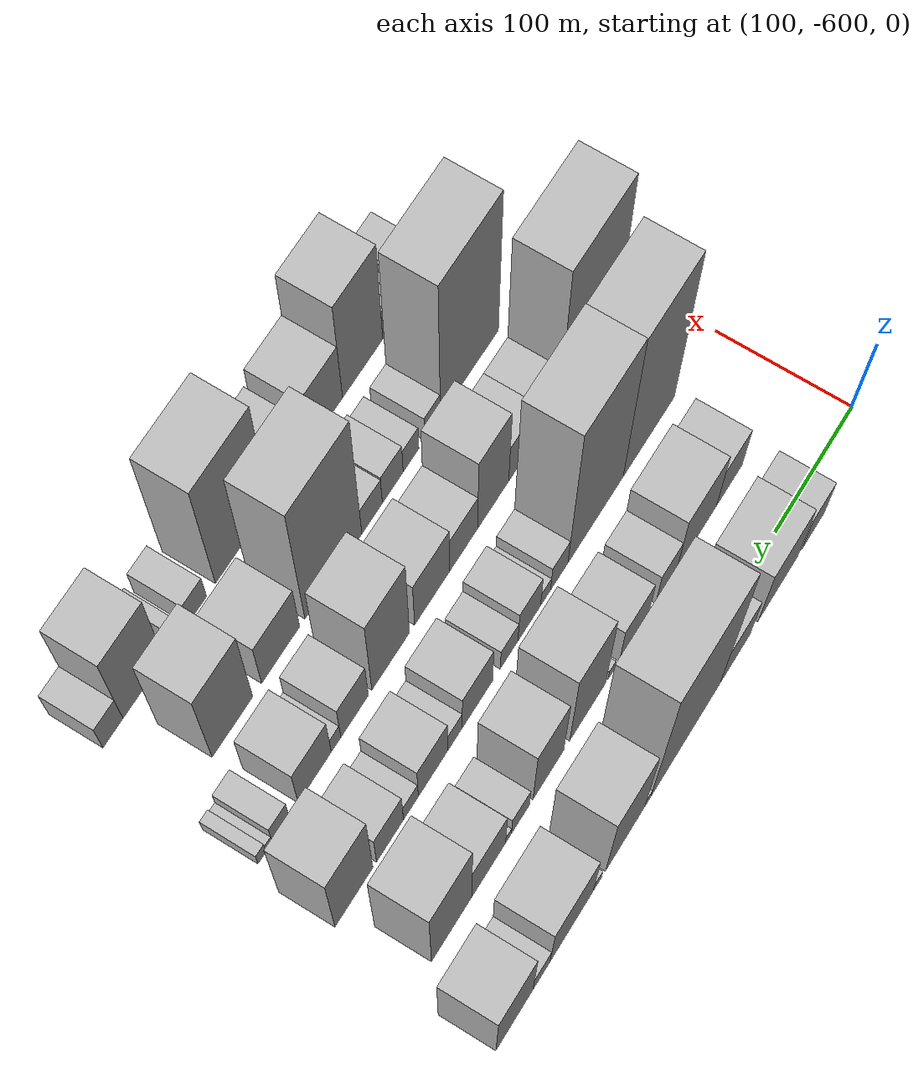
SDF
<sdf version="1.6">
 <world name="default">
  <model name="building_12">
   <static>1</static>
   <pose>100.0000 -513.1428 0 0.000000 0.000000 0.000000</pose>
   <link name="link">
    <pose>0 0 27.00 0 0 0</pose>
    <collision name="collision"><geometry><box><size>40.0000 29.3333 54.0000</size></box></geometry></collision>
    <visual name="visual">
     <cast_shadows>0</cast_shadows>
     <geometry><box><size>40.0000 29.3333 54.0000</size></box></geometry>
     <material>
      <script>
       <uri>model://HANNAS_wall/materials/scripts</uri>
       <uri>model://HANNAS_wall/materials/textures</uri>
       <name>vrc/HANNAS_wall</name>
      </script>
     </material>
    </visual>
   </link>
  </model>
  <model name="building_13">
   <static>1</static>
   <pose>100.0000 -468.4265 0 0.000000 0.000000 0.000000</pose>
   <link name="link">
    <pose>0 0 43.50 0 0 0</pose>
    <collision name="collision"><geometry><box><size>40.0000 50.0993 87.0000</size></box></geometry></collision>
    <visual name="visual">
     <cast_shadows>0</cast_shadows>
     <geometry><box><size>40.0000 50.0993 87.0000</size></box></geometry>
     <material>
      <script>
       <uri>model://HANNAS_wall/materials/scripts</uri>
       <uri>model://HANNAS_wall/materials/textures</uri>
       <name>vrc/HANNAS_wall</name>
      </script>
     </material>
    </visual>
   </link>
  </model>
  <model name="building_14">
   <static>1</static>
   <pose>100.0000 -414.6459 0 0.000000 0.000000 0.000000</pose>
   <link name="link">
    <pose>0 0 33.00 0 0 0</pose>
    <collision name="collision"><geometry><box><size>40.0000 37.4620 66.0000</size></box></geometry></collision>
    <visual name="visual">
     <cast_shadows>0</cast_shadows>
     <geometry><box><size>40.0000 37.4620 66.0000</size></box></geometry>
     <material>
      <script>
       <uri>model://HANNAS_wall/materials/scripts</uri>
       <uri>model://HANNAS_wall/materials/textures</uri>
       <name>vrc/HANNAS_wall</name>
      </script>
     </material>
    </visual>
   </link>
  </model>
  <model name="building_15">
   <static>1</static>
   <pose>100.0000 -353.8489 0 0.000000 0.000000 0.000000</pose>
   <link name="link">
    <pose>0 0 108.00 0 0 0</pose>
    <collision name="collision"><geometry><box><size>40.0000 84.1318 216.0000</size></box></geometry></collision>
    <visual name="visual">
     <cast_shadows>0</cast_shadows>
     <geometry><box><size>40.0000 84.1318 216.0000</size></box></geometry>
     <material>
      <script>
       <uri>model://HANNAS_wall/materials/scripts</uri>
       <uri>model://HANNAS_wall/materials/textures</uri>
       <name>vrc/HANNAS_wall</name>
      </script>
     </material>
    </visual>
   </link>
  </model>
  <model name="building_16">
   <static>1</static>
   <pose>100.0000 -308.0549 0 0.000000 0.000000 0.000000</pose>
   <link name="link">
    <pose>0 0 9.00 0 0 0</pose>
    <collision name="collision"><geometry><box><size>40.0000 7.4563 18.0000</size></box></geometry></collision>
    <visual name="visual">
     <cast_shadows>0</cast_shadows>
     <geometry><box><size>40.0000 7.4563 18.0000</size></box></geometry>
     <material>
      <script>
       <uri>model://HANNAS_wall/materials/scripts</uri>
       <uri>model://HANNAS_wall/materials/textures</uri>
       <name>vrc/HANNAS_wall</name>
      </script>
     </material>
    </visual>
   </link>
  </model>
  <model name="building_17">
   <static>1</static>
   <pose>100.0000 -281.3452 0 0.000000 0.000000 0.000000</pose>
   <link name="link">
    <pose>0 0 61.50 0 0 0</pose>
    <collision name="collision"><geometry><box><size>40.0000 45.9632 123.0000</size></box></geometry></collision>
    <visual name="visual">
     <cast_shadows>0</cast_shadows>
     <geometry><box><size>40.0000 45.9632 123.0000</size></box></geometry>
     <material>
      <script>
       <uri>model://HANNAS_wall/materials/scripts</uri>
       <uri>model://HANNAS_wall/materials/textures</uri>
       <name>vrc/HANNAS_wall</name>
      </script>
     </material>
    </visual>
   </link>
  </model>
  <model name="building_18">
   <static>1</static>
   <pose>100.0000 -248.4081 0 0.000000 0.000000 0.000000</pose>
   <link name="link">
    <pose>0 0 10.50 0 0 0</pose>
    <collision name="collision"><geometry><box><size>40.0000 9.9111 21.0000</size></box></geometry></collision>
    <visual name="visual">
     <cast_shadows>0</cast_shadows>
     <geometry><box><size>40.0000 9.9111 21.0000</size></box></geometry>
     <material>
      <script>
       <uri>model://HANNAS_wall/materials/scripts</uri>
       <uri>model://HANNAS_wall/materials/textures</uri>
       <name>vrc/HANNAS_wall</name>
      </script>
     </material>
    </visual>
   </link>
  </model>
  <model name="building_19">
   <static>1</static>
   <pose>100.0000 -218.5129 0 0.000000 0.000000 0.000000</pose>
   <link name="link">
    <pose>0 0 43.50 0 0 0</pose>
    <collision name="collision"><geometry><box><size>40.0000 49.8792 87.0000</size></box></geometry></collision>
    <visual name="visual">
     <cast_shadows>0</cast_shadows>
     <geometry><box><size>40.0000 49.8792 87.0000</size></box></geometry>
     <material>
      <script>
       <uri>model://HANNAS_wall/materials/scripts</uri>
       <uri>model://HANNAS_wall/materials/textures</uri>
       <name>vrc/HANNAS_wall</name>
      </script>
     </material>
    </visual>
   </link>
  </model>
  <model name="building_20">
   <static>1</static>
   <pose>100.0000 -183.7826 0 0.000000 0.000000 0.000000</pose>
   <link name="link">
    <pose>0 0 18.00 0 0 0</pose>
    <collision name="collision"><geometry><box><size>40.0000 19.5815 36.0000</size></box></geometry></collision>
    <visual name="visual">
     <cast_shadows>0</cast_shadows>
     <geometry><box><size>40.0000 19.5815 36.0000</size></box></geometry>
     <material>
      <script>
       <uri>model://HANNAS_wall/materials/scripts</uri>
       <uri>model://HANNAS_wall/materials/textures</uri>
       <name>vrc/HANNAS_wall</name>
      </script>
     </material>
    </visual>
   </link>
  </model>
  <model name="building_21">
   <static>1</static>
   <pose>100.0000 -153.1619 0 0.000000 0.000000 0.000000</pose>
   <link name="link">
    <pose>0 0 52.50 0 0 0</pose>
    <collision name="collision"><geometry><box><size>40.0000 41.6599 105.0000</size></box></geometry></collision>
    <visual name="visual">
     <cast_shadows>0</cast_shadows>
     <geometry><box><size>40.0000 41.6599 105.0000</size></box></geometry>
     <material>
      <script>
       <uri>model://HANNAS_wall/materials/scripts</uri>
       <uri>model://HANNAS_wall/materials/textures</uri>
       <name>vrc/HANNAS_wall</name>
      </script>
     </material>
    </visual>
   </link>
  </model>
  <model name="building_69">
   <static>1</static>
   <pose>160.0000 -512.0375 0 0.000000 0.000000 0.000000</pose>
   <link name="link">
    <pose>0 0 30.00 0 0 0</pose>
    <collision name="collision"><geometry><box><size>40.0000 32.5364 60.0000</size></box></geometry></collision>
    <visual name="visual">
     <cast_shadows>0</cast_shadows>
     <geometry><box><size>40.0000 32.5364 60.0000</size></box></geometry>
     <material>
      <script>
       <uri>model://HANNAS_wall/materials/scripts</uri>
       <uri>model://HANNAS_wall/materials/textures</uri>
       <name>vrc/HANNAS_wall</name>
      </script>
     </material>
    </visual>
   </link>
  </model>
  <model name="building_70">
   <static>1</static>
   <pose>160.0000 -470.9844 0 0.000000 0.000000 0.000000</pose>
   <link name="link">
    <pose>0 0 43.50 0 0 0</pose>
    <collision name="collision"><geometry><box><size>40.0000 49.5698 87.0000</size></box></geometry></collision>
    <visual name="visual">
     <cast_shadows>0</cast_shadows>
     <geometry><box><size>40.0000 49.5698 87.0000</size></box></geometry>
     <material>
      <script>
       <uri>model://HANNAS_wall/materials/scripts</uri>
       <uri>model://HANNAS_wall/materials/textures</uri>
       <name>vrc/HANNAS_wall</name>
      </script>
     </material>
    </visual>
   </link>
  </model>
  <model name="building_71">
   <static>1</static>
   <pose>160.0000 -433.2475 0 0.000000 0.000000 0.000000</pose>
   <link name="link">
    <pose>0 0 25.50 0 0 0</pose>
    <collision name="collision"><geometry><box><size>40.0000 25.9041 51.0000</size></box></geometry></collision>
    <visual name="visual">
     <cast_shadows>0</cast_shadows>
     <geometry><box><size>40.0000 25.9041 51.0000</size></box></geometry>
     <material>
      <script>
       <uri>model://HANNAS_wall/materials/scripts</uri>
       <uri>model://HANNAS_wall/materials/textures</uri>
       <name>vrc/HANNAS_wall</name>
      </script>
     </material>
    </visual>
   </link>
  </model>
  <model name="building_72">
   <static>1</static>
   <pose>160.0000 -393.6166 0 0.000000 0.000000 0.000000</pose>
   <link name="link">
    <pose>0 0 30.00 0 0 0</pose>
    <collision name="collision"><geometry><box><size>40.0000 35.3577 60.0000</size></box></geometry></collision>
    <visual name="visual">
     <cast_shadows>0</cast_shadows>
     <geometry><box><size>40.0000 35.3577 60.0000</size></box></geometry>
     <material>
      <script>
       <uri>model://HANNAS_wall/materials/scripts</uri>
       <uri>model://HANNAS_wall/materials/textures</uri>
       <name>vrc/HANNAS_wall</name>
      </script>
     </material>
    </visual>
   </link>
  </model>
  <model name="building_73">
   <static>1</static>
   <pose>160.0000 -365.9603 0 0.000000 0.000000 0.000000</pose>
   <link name="link">
    <pose>0 0 9.00 0 0 0</pose>
    <collision name="collision"><geometry><box><size>40.0000 7.9550 18.0000</size></box></geometry></collision>
    <visual name="visual">
     <cast_shadows>0</cast_shadows>
     <geometry><box><size>40.0000 7.9550 18.0000</size></box></geometry>
     <material>
      <script>
       <uri>model://HANNAS_wall/materials/scripts</uri>
       <uri>model://HANNAS_wall/materials/textures</uri>
       <name>vrc/HANNAS_wall</name>
      </script>
     </material>
    </visual>
   </link>
  </model>
  <model name="building_74">
   <static>1</static>
   <pose>160.0000 -337.6335 0 0.000000 0.000000 0.000000</pose>
   <link name="link">
    <pose>0 0 64.50 0 0 0</pose>
    <collision name="collision"><geometry><box><size>40.0000 42.6985 129.0000</size></box></geometry></collision>
    <visual name="visual">
     <cast_shadows>0</cast_shadows>
     <geometry><box><size>40.0000 42.6985 129.0000</size></box></geometry>
     <material>
      <script>
       <uri>model://HANNAS_wall/materials/scripts</uri>
       <uri>model://HANNAS_wall/materials/textures</uri>
       <name>vrc/HANNAS_wall</name>
      </script>
     </material>
    </visual>
   </link>
  </model>
  <model name="building_75">
   <static>1</static>
   <pose>160.0000 -291.1654 0 0.000000 0.000000 0.000000</pose>
   <link name="link">
    <pose>0 0 51.00 0 0 0</pose>
    <collision name="collision"><geometry><box><size>40.0000 36.2378 102.0000</size></box></geometry></collision>
    <visual name="visual">
     <cast_shadows>0</cast_shadows>
     <geometry><box><size>40.0000 36.2378 102.0000</size></box></geometry>
     <material>
      <script>
       <uri>model://HANNAS_wall/materials/scripts</uri>
       <uri>model://HANNAS_wall/materials/textures</uri>
       <name>vrc/HANNAS_wall</name>
      </script>
     </material>
    </visual>
   </link>
  </model>
  <model name="building_76">
   <static>1</static>
   <pose>160.0000 -258.5299 0 0.000000 0.000000 0.000000</pose>
   <link name="link">
    <pose>0 0 18.00 0 0 0</pose>
    <collision name="collision"><geometry><box><size>40.0000 21.0333 36.0000</size></box></geometry></collision>
    <visual name="visual">
     <cast_shadows>0</cast_shadows>
     <geometry><box><size>40.0000 21.0333 36.0000</size></box></geometry>
     <material>
      <script>
       <uri>model://HANNAS_wall/materials/scripts</uri>
       <uri>model://HANNAS_wall/materials/textures</uri>
       <name>vrc/HANNAS_wall</name>
      </script>
     </material>
    </visual>
   </link>
  </model>
  <model name="building_77">
   <static>1</static>
   <pose>160.0000 -244.5683 0 0.000000 0.000000 0.000000</pose>
   <link name="link">
    <pose>0 0 7.50 0 0 0</pose>
    <collision name="collision"><geometry><box><size>40.0000 6.8898 15.0000</size></box></geometry></collision>
    <visual name="visual">
     <cast_shadows>0</cast_shadows>
     <geometry><box><size>40.0000 6.8898 15.0000</size></box></geometry>
     <material>
      <script>
       <uri>model://HANNAS_wall/materials/scripts</uri>
       <uri>model://HANNAS_wall/materials/textures</uri>
       <name>vrc/HANNAS_wall</name>
      </script>
     </material>
    </visual>
   </link>
  </model>
  <model name="building_78">
   <static>1</static>
   <pose>160.0000 -221.6809 0 0.000000 0.000000 0.000000</pose>
   <link name="link">
    <pose>0 0 34.50 0 0 0</pose>
    <collision name="collision"><geometry><box><size>40.0000 38.8851 69.0000</size></box></geometry></collision>
    <visual name="visual">
     <cast_shadows>0</cast_shadows>
     <geometry><box><size>40.0000 38.8851 69.0000</size></box></geometry>
     <material>
      <script>
       <uri>model://HANNAS_wall/materials/scripts</uri>
       <uri>model://HANNAS_wall/materials/textures</uri>
       <name>vrc/HANNAS_wall</name>
      </script>
     </material>
    </visual>
   </link>
  </model>
  <model name="building_79">
   <static>1</static>
   <pose>160.0000 -179.5642 0 0.000000 0.000000 0.000000</pose>
   <link name="link">
    <pose>0 0 64.50 0 0 0</pose>
    <collision name="collision"><geometry><box><size>40.0000 45.3483 129.0000</size></box></geometry></collision>
    <visual name="visual">
     <cast_shadows>0</cast_shadows>
     <geometry><box><size>40.0000 45.3483 129.0000</size></box></geometry>
     <material>
      <script>
       <uri>model://HANNAS_wall/materials/scripts</uri>
       <uri>model://HANNAS_wall/materials/textures</uri>
       <name>vrc/HANNAS_wall</name>
      </script>
     </material>
    </visual>
   </link>
  </model>
  <model name="building_118">
   <static>1</static>
   <pose>220.0000 -513.8386 0 0.000000 0.000000 0.000000</pose>
   <link name="link">
    <pose>0 0 106.50 0 0 0</pose>
    <collision name="collision"><geometry><box><size>40.0000 64.0455 213.0000</size></box></geometry></collision>
    <visual name="visual">
     <cast_shadows>0</cast_shadows>
     <geometry><box><size>40.0000 64.0455 213.0000</size></box></geometry>
     <material>
      <script>
       <uri>model://HANNAS_wall/materials/scripts</uri>
       <uri>model://HANNAS_wall/materials/textures</uri>
       <name>vrc/HANNAS_wall</name>
      </script>
     </material>
    </visual>
   </link>
  </model>
  <model name="building_119">
   <static>1</static>
   <pose>220.0000 -447.8533 0 0.000000 0.000000 0.000000</pose>
   <link name="link">
    <pose>0 0 108.00 0 0 0</pose>
    <collision name="collision"><geometry><box><size>40.0000 67.9252 216.0000</size></box></geometry></collision>
    <visual name="visual">
     <cast_shadows>0</cast_shadows>
     <geometry><box><size>40.0000 67.9252 216.0000</size></box></geometry>
     <material>
      <script>
       <uri>model://HANNAS_wall/materials/scripts</uri>
       <uri>model://HANNAS_wall/materials/textures</uri>
       <name>vrc/HANNAS_wall</name>
      </script>
     </material>
    </visual>
   </link>
  </model>
  <model name="building_120">
   <static>1</static>
   <pose>220.0000 -403.3555 0 0.000000 0.000000 0.000000</pose>
   <link name="link">
    <pose>0 0 21.00 0 0 0</pose>
    <collision name="collision"><geometry><box><size>40.0000 21.0705 42.0000</size></box></geometry></collision>
    <visual name="visual">
     <cast_shadows>0</cast_shadows>
     <geometry><box><size>40.0000 21.0705 42.0000</size></box></geometry>
     <material>
      <script>
       <uri>model://HANNAS_wall/materials/scripts</uri>
       <uri>model://HANNAS_wall/materials/textures</uri>
       <name>vrc/HANNAS_wall</name>
      </script>
     </material>
    </visual>
   </link>
  </model>
  <model name="building_121">
   <static>1</static>
   <pose>220.0000 -386.8627 0 0.000000 0.000000 0.000000</pose>
   <link name="link">
    <pose>0 0 12.00 0 0 0</pose>
    <collision name="collision"><geometry><box><size>40.0000 11.9150 24.0000</size></box></geometry></collision>
    <visual name="visual">
     <cast_shadows>0</cast_shadows>
     <geometry><box><size>40.0000 11.9150 24.0000</size></box></geometry>
     <material>
      <script>
       <uri>model://HANNAS_wall/materials/scripts</uri>
       <uri>model://HANNAS_wall/materials/textures</uri>
       <name>vrc/HANNAS_wall</name>
      </script>
     </material>
    </visual>
   </link>
  </model>
  <model name="building_122">
   <static>1</static>
   <pose>220.0000 -367.3651 0 0.000000 0.000000 0.000000</pose>
   <link name="link">
    <pose>0 0 27.00 0 0 0</pose>
    <collision name="collision"><geometry><box><size>40.0000 27.0804 54.0000</size></box></geometry></collision>
    <visual name="visual">
     <cast_shadows>0</cast_shadows>
     <geometry><box><size>40.0000 27.0804 54.0000</size></box></geometry>
     <material>
      <script>
       <uri>model://HANNAS_wall/materials/scripts</uri>
       <uri>model://HANNAS_wall/materials/textures</uri>
       <name>vrc/HANNAS_wall</name>
      </script>
     </material>
    </visual>
   </link>
  </model>
  <model name="building_123">
   <static>1</static>
   <pose>220.0000 -343.3908 0 0.000000 0.000000 0.000000</pose>
   <link name="link">
    <pose>0 0 18.00 0 0 0</pose>
    <collision name="collision"><geometry><box><size>40.0000 20.8681 36.0000</size></box></geometry></collision>
    <visual name="visual">
     <cast_shadows>0</cast_shadows>
     <geometry><box><size>40.0000 20.8681 36.0000</size></box></geometry>
     <material>
      <script>
       <uri>model://HANNAS_wall/materials/scripts</uri>
       <uri>model://HANNAS_wall/materials/textures</uri>
       <name>vrc/HANNAS_wall</name>
      </script>
     </material>
    </visual>
   </link>
  </model>
  <model name="building_124">
   <static>1</static>
   <pose>220.0000 -306.2188 0 0.000000 0.000000 0.000000</pose>
   <link name="link">
    <pose>0 0 31.50 0 0 0</pose>
    <collision name="collision"><geometry><box><size>40.0000 35.4758 63.0000</size></box></geometry></collision>
    <visual name="visual">
     <cast_shadows>0</cast_shadows>
     <geometry><box><size>40.0000 35.4758 63.0000</size></box></geometry>
     <material>
      <script>
       <uri>model://HANNAS_wall/materials/scripts</uri>
       <uri>model://HANNAS_wall/materials/textures</uri>
       <name>vrc/HANNAS_wall</name>
      </script>
     </material>
    </visual>
   </link>
  </model>
  <model name="building_125">
   <static>1</static>
   <pose>220.0000 -280.1373 0 0.000000 0.000000 0.000000</pose>
   <link name="link">
    <pose>0 0 16.50 0 0 0</pose>
    <collision name="collision"><geometry><box><size>40.0000 16.6873 33.0000</size></box></geometry></collision>
    <visual name="visual">
     <cast_shadows>0</cast_shadows>
     <geometry><box><size>40.0000 16.6873 33.0000</size></box></geometry>
     <material>
      <script>
       <uri>model://HANNAS_wall/materials/scripts</uri>
       <uri>model://HANNAS_wall/materials/textures</uri>
       <name>vrc/HANNAS_wall</name>
      </script>
     </material>
    </visual>
   </link>
  </model>
  <model name="building_126">
   <static>1</static>
   <pose>220.0000 -254.8483 0 0.000000 0.000000 0.000000</pose>
   <link name="link">
    <pose>0 0 30.00 0 0 0</pose>
    <collision name="collision"><geometry><box><size>40.0000 33.8906 60.0000</size></box></geometry></collision>
    <visual name="visual">
     <cast_shadows>0</cast_shadows>
     <geometry><box><size>40.0000 33.8906 60.0000</size></box></geometry>
     <material>
      <script>
       <uri>model://HANNAS_wall/materials/scripts</uri>
       <uri>model://HANNAS_wall/materials/textures</uri>
       <name>vrc/HANNAS_wall</name>
      </script>
     </material>
    </visual>
   </link>
  </model>
  <model name="building_127">
   <static>1</static>
   <pose>220.0000 -229.4338 0 0.000000 0.000000 0.000000</pose>
   <link name="link">
    <pose>0 0 15.00 0 0 0</pose>
    <collision name="collision"><geometry><box><size>40.0000 16.9385 30.0000</size></box></geometry></collision>
    <visual name="visual">
     <cast_shadows>0</cast_shadows>
     <geometry><box><size>40.0000 16.9385 30.0000</size></box></geometry>
     <material>
      <script>
       <uri>model://HANNAS_wall/materials/scripts</uri>
       <uri>model://HANNAS_wall/materials/textures</uri>
       <name>vrc/HANNAS_wall</name>
      </script>
     </material>
    </visual>
   </link>
  </model>
  <model name="building_128">
   <static>1</static>
   <pose>220.0000 -205.7481 0 0.000000 0.000000 0.000000</pose>
   <link name="link">
    <pose>0 0 28.50 0 0 0</pose>
    <collision name="collision"><geometry><box><size>40.0000 30.4328 57.0000</size></box></geometry></collision>
    <visual name="visual">
     <cast_shadows>0</cast_shadows>
     <geometry><box><size>40.0000 30.4328 57.0000</size></box></geometry>
     <material>
      <script>
       <uri>model://HANNAS_wall/materials/scripts</uri>
       <uri>model://HANNAS_wall/materials/textures</uri>
       <name>vrc/HANNAS_wall</name>
      </script>
     </material>
    </visual>
   </link>
  </model>
  <model name="building_129">
   <static>1</static>
   <pose>220.0000 -165.3486 0 0.000000 0.000000 0.000000</pose>
   <link name="link">
    <pose>0 0 60.00 0 0 0</pose>
    <collision name="collision"><geometry><box><size>40.0000 42.3662 120.0000</size></box></geometry></collision>
    <visual name="visual">
     <cast_shadows>0</cast_shadows>
     <geometry><box><size>40.0000 42.3662 120.0000</size></box></geometry>
     <material>
      <script>
       <uri>model://HANNAS_wall/materials/scripts</uri>
       <uri>model://HANNAS_wall/materials/textures</uri>
       <name>vrc/HANNAS_wall</name>
      </script>
     </material>
    </visual>
   </link>
  </model>
  <model name="building_168">
   <static>1</static>
   <pose>280.0000 -539.8434 0 0.000000 0.000000 0.000000</pose>
   <link name="link">
    <pose>0 0 97.50 0 0 0</pose>
    <collision name="collision"><geometry><box><size>40.0000 72.7440 195.0000</size></box></geometry></collision>
    <visual name="visual">
     <cast_shadows>0</cast_shadows>
     <geometry><box><size>40.0000 72.7440 195.0000</size></box></geometry>
     <material>
      <script>
       <uri>model://HANNAS_wall/materials/scripts</uri>
       <uri>model://HANNAS_wall/materials/textures</uri>
       <name>vrc/HANNAS_wall</name>
      </script>
     </material>
    </visual>
   </link>
  </model>
  <model name="building_169">
   <static>1</static>
   <pose>280.0000 -489.1799 0 0.000000 0.000000 0.000000</pose>
   <link name="link">
    <pose>0 0 28.50 0 0 0</pose>
    <collision name="collision"><geometry><box><size>40.0000 28.5829 57.0000</size></box></geometry></collision>
    <visual name="visual">
     <cast_shadows>0</cast_shadows>
     <geometry><box><size>40.0000 28.5829 57.0000</size></box></geometry>
     <material>
      <script>
       <uri>model://HANNAS_wall/materials/scripts</uri>
       <uri>model://HANNAS_wall/materials/textures</uri>
       <name>vrc/HANNAS_wall</name>
      </script>
     </material>
    </visual>
   </link>
  </model>
  <model name="building_170">
   <static>1</static>
   <pose>280.0000 -457.9721 0 0.000000 0.000000 0.000000</pose>
   <link name="link">
    <pose>0 0 28.50 0 0 0</pose>
    <collision name="collision"><geometry><box><size>40.0000 33.8326 57.0000</size></box></geometry></collision>
    <visual name="visual">
     <cast_shadows>0</cast_shadows>
     <geometry><box><size>40.0000 33.8326 57.0000</size></box></geometry>
     <material>
      <script>
       <uri>model://HANNAS_wall/materials/scripts</uri>
       <uri>model://HANNAS_wall/materials/textures</uri>
       <name>vrc/HANNAS_wall</name>
      </script>
     </material>
    </visual>
   </link>
  </model>
  <model name="building_171">
   <static>1</static>
   <pose>280.0000 -422.2722 0 0.000000 0.000000 0.000000</pose>
   <link name="link">
    <pose>0 0 57.00 0 0 0</pose>
    <collision name="collision"><geometry><box><size>40.0000 37.5671 114.0000</size></box></geometry></collision>
    <visual name="visual">
     <cast_shadows>0</cast_shadows>
     <geometry><box><size>40.0000 37.5671 114.0000</size></box></geometry>
     <material>
      <script>
       <uri>model://HANNAS_wall/materials/scripts</uri>
       <uri>model://HANNAS_wall/materials/textures</uri>
       <name>vrc/HANNAS_wall</name>
      </script>
     </material>
    </visual>
   </link>
  </model>
  <model name="building_172">
   <static>1</static>
   <pose>280.0000 -387.0224 0 0.000000 0.000000 0.000000</pose>
   <link name="link">
    <pose>0 0 28.50 0 0 0</pose>
    <collision name="collision"><geometry><box><size>40.0000 32.9325 57.0000</size></box></geometry></collision>
    <visual name="visual">
     <cast_shadows>0</cast_shadows>
     <geometry><box><size>40.0000 32.9325 57.0000</size></box></geometry>
     <material>
      <script>
       <uri>model://HANNAS_wall/materials/scripts</uri>
       <uri>model://HANNAS_wall/materials/textures</uri>
       <name>vrc/HANNAS_wall</name>
      </script>
     </material>
    </visual>
   </link>
  </model>
  <model name="building_173">
   <static>1</static>
   <pose>280.0000 -349.8834 0 0.000000 0.000000 0.000000</pose>
   <link name="link">
    <pose>0 0 37.50 0 0 0</pose>
    <collision name="collision"><geometry><box><size>40.0000 41.3454 75.0000</size></box></geometry></collision>
    <visual name="visual">
     <cast_shadows>0</cast_shadows>
     <geometry><box><size>40.0000 41.3454 75.0000</size></box></geometry>
     <material>
      <script>
       <uri>model://HANNAS_wall/materials/scripts</uri>
       <uri>model://HANNAS_wall/materials/textures</uri>
       <name>vrc/HANNAS_wall</name>
      </script>
     </material>
    </visual>
   </link>
  </model>
  <model name="building_174">
   <static>1</static>
   <pose>280.0000 -301.4588 0 0.000000 0.000000 0.000000</pose>
   <link name="link">
    <pose>0 0 64.50 0 0 0</pose>
    <collision name="collision"><geometry><box><size>40.0000 43.5037 129.0000</size></box></geometry></collision>
    <visual name="visual">
     <cast_shadows>0</cast_shadows>
     <geometry><box><size>40.0000 43.5037 129.0000</size></box></geometry>
     <material>
      <script>
       <uri>model://HANNAS_wall/materials/scripts</uri>
       <uri>model://HANNAS_wall/materials/textures</uri>
       <name>vrc/HANNAS_wall</name>
      </script>
     </material>
    </visual>
   </link>
  </model>
  <model name="building_175">
   <static>1</static>
   <pose>280.0000 -260.0709 0 0.000000 0.000000 0.000000</pose>
   <link name="link">
    <pose>0 0 30.00 0 0 0</pose>
    <collision name="collision"><geometry><box><size>40.0000 31.2723 60.0000</size></box></geometry></collision>
    <visual name="visual">
     <cast_shadows>0</cast_shadows>
     <geometry><box><size>40.0000 31.2723 60.0000</size></box></geometry>
     <material>
      <script>
       <uri>model://HANNAS_wall/materials/scripts</uri>
       <uri>model://HANNAS_wall/materials/textures</uri>
       <name>vrc/HANNAS_wall</name>
      </script>
     </material>
    </visual>
   </link>
  </model>
  <model name="building_176">
   <static>1</static>
   <pose>280.0000 -239.0136 0 0.000000 0.000000 0.000000</pose>
   <link name="link">
    <pose>0 0 13.50 0 0 0</pose>
    <collision name="collision"><geometry><box><size>40.0000 10.8423 27.0000</size></box></geometry></collision>
    <visual name="visual">
     <cast_shadows>0</cast_shadows>
     <geometry><box><size>40.0000 10.8423 27.0000</size></box></geometry>
     <material>
      <script>
       <uri>model://HANNAS_wall/materials/scripts</uri>
       <uri>model://HANNAS_wall/materials/textures</uri>
       <name>vrc/HANNAS_wall</name>
      </script>
     </material>
    </visual>
   </link>
  </model>
  <model name="building_177">
   <static>1</static>
   <pose>280.0000 -214.9571 0 0.000000 0.000000 0.000000</pose>
   <link name="link">
    <pose>0 0 33.00 0 0 0</pose>
    <collision name="collision"><geometry><box><size>40.0000 37.2706 66.0000</size></box></geometry></collision>
    <visual name="visual">
     <cast_shadows>0</cast_shadows>
     <geometry><box><size>40.0000 37.2706 66.0000</size></box></geometry>
     <material>
      <script>
       <uri>model://HANNAS_wall/materials/scripts</uri>
       <uri>model://HANNAS_wall/materials/textures</uri>
       <name>vrc/HANNAS_wall</name>
      </script>
     </material>
    </visual>
   </link>
  </model>
  <model name="building_178">
   <static>1</static>
   <pose>280.0000 -176.9953 0 0.000000 0.000000 0.000000</pose>
   <link name="link">
    <pose>0 0 16.50 0 0 0</pose>
    <collision name="collision"><geometry><box><size>40.0000 18.6529 33.0000</size></box></geometry></collision>
    <visual name="visual">
     <cast_shadows>0</cast_shadows>
     <geometry><box><size>40.0000 18.6529 33.0000</size></box></geometry>
     <material>
      <script>
       <uri>model://HANNAS_wall/materials/scripts</uri>
       <uri>model://HANNAS_wall/materials/textures</uri>
       <name>vrc/HANNAS_wall</name>
      </script>
     </material>
    </visual>
   </link>
  </model>
  <model name="building_179">
   <static>1</static>
   <pose>280.0000 -164.2637 0 0.000000 0.000000 0.000000</pose>
   <link name="link">
    <pose>0 0 7.50 0 0 0</pose>
    <collision name="collision"><geometry><box><size>40.0000 6.8103 15.0000</size></box></geometry></collision>
    <visual name="visual">
     <cast_shadows>0</cast_shadows>
     <geometry><box><size>40.0000 6.8103 15.0000</size></box></geometry>
     <material>
      <script>
       <uri>model://HANNAS_wall/materials/scripts</uri>
       <uri>model://HANNAS_wall/materials/textures</uri>
       <name>vrc/HANNAS_wall</name>
      </script>
     </material>
    </visual>
   </link>
  </model>
  <model name="building_180">
   <static>1</static>
   <pose>280.0000 -156.4036 0 0.000000 0.000000 0.000000</pose>
   <link name="link">
    <pose>0 0 10.50 0 0 0</pose>
    <collision name="collision"><geometry><box><size>40.0000 8.9100 21.0000</size></box></geometry></collision>
    <visual name="visual">
     <cast_shadows>0</cast_shadows>
     <geometry><box><size>40.0000 8.9100 21.0000</size></box></geometry>
     <material>
      <script>
       <uri>model://HANNAS_wall/materials/scripts</uri>
       <uri>model://HANNAS_wall/materials/textures</uri>
       <name>vrc/HANNAS_wall</name>
      </script>
     </material>
    </visual>
   </link>
  </model>
  <model name="building_226">
   <static>1</static>
   <pose>340.0000 -491.1092 0 0.000000 0.000000 0.000000</pose>
   <link name="link">
    <pose>0 0 97.50 0 0 0</pose>
    <collision name="collision"><geometry><box><size>40.0000 70.5909 195.0000</size></box></geometry></collision>
    <visual name="visual">
     <cast_shadows>0</cast_shadows>
     <geometry><box><size>40.0000 70.5909 195.0000</size></box></geometry>
     <material>
      <script>
       <uri>model://HANNAS_wall/materials/scripts</uri>
       <uri>model://HANNAS_wall/materials/textures</uri>
       <name>vrc/HANNAS_wall</name>
      </script>
     </material>
    </visual>
   </link>
  </model>
  <model name="building_227">
   <static>1</static>
   <pose>340.0000 -446.3281 0 0.000000 0.000000 0.000000</pose>
   <link name="link">
    <pose>0 0 18.00 0 0 0</pose>
    <collision name="collision"><geometry><box><size>40.0000 18.9713 36.0000</size></box></geometry></collision>
    <visual name="visual">
     <cast_shadows>0</cast_shadows>
     <geometry><box><size>40.0000 18.9713 36.0000</size></box></geometry>
     <material>
      <script>
       <uri>model://HANNAS_wall/materials/scripts</uri>
       <uri>model://HANNAS_wall/materials/textures</uri>
       <name>vrc/HANNAS_wall</name>
      </script>
     </material>
    </visual>
   </link>
  </model>
  <model name="building_228">
   <static>1</static>
   <pose>340.0000 -420.4988 0 0.000000 0.000000 0.000000</pose>
   <link name="link">
    <pose>0 0 18.00 0 0 0</pose>
    <collision name="collision"><geometry><box><size>40.0000 18.6875 36.0000</size></box></geometry></collision>
    <visual name="visual">
     <cast_shadows>0</cast_shadows>
     <geometry><box><size>40.0000 18.6875 36.0000</size></box></geometry>
     <material>
      <script>
       <uri>model://HANNAS_wall/materials/scripts</uri>
       <uri>model://HANNAS_wall/materials/textures</uri>
       <name>vrc/HANNAS_wall</name>
      </script>
     </material>
    </visual>
   </link>
  </model>
  <model name="building_229">
   <static>1</static>
   <pose>340.0000 -398.8589 0 0.000000 0.000000 0.000000</pose>
   <link name="link">
    <pose>0 0 22.50 0 0 0</pose>
    <collision name="collision"><geometry><box><size>40.0000 24.5922 45.0000</size></box></geometry></collision>
    <visual name="visual">
     <cast_shadows>0</cast_shadows>
     <geometry><box><size>40.0000 24.5922 45.0000</size></box></geometry>
     <material>
      <script>
       <uri>model://HANNAS_wall/materials/scripts</uri>
       <uri>model://HANNAS_wall/materials/textures</uri>
       <name>vrc/HANNAS_wall</name>
      </script>
     </material>
    </visual>
   </link>
  </model>
  <model name="building_230">
   <static>1</static>
   <pose>340.0000 -374.5205 0 0.000000 0.000000 0.000000</pose>
   <link name="link">
    <pose>0 0 21.00 0 0 0</pose>
    <collision name="collision"><geometry><box><size>40.0000 24.0845 42.0000</size></box></geometry></collision>
    <visual name="visual">
     <cast_shadows>0</cast_shadows>
     <geometry><box><size>40.0000 24.0845 42.0000</size></box></geometry>
     <material>
      <script>
       <uri>model://HANNAS_wall/materials/scripts</uri>
       <uri>model://HANNAS_wall/materials/textures</uri>
       <name>vrc/HANNAS_wall</name>
      </script>
     </material>
    </visual>
   </link>
  </model>
  <model name="building_231">
   <static>1</static>
   <pose>340.0000 -329.5601 0 0.000000 0.000000 0.000000</pose>
   <link name="link">
    <pose>0 0 94.50 0 0 0</pose>
    <collision name="collision"><geometry><box><size>40.0000 65.8362 189.0000</size></box></geometry></collision>
    <visual name="visual">
     <cast_shadows>0</cast_shadows>
     <geometry><box><size>40.0000 65.8362 189.0000</size></box></geometry>
     <material>
      <script>
       <uri>model://HANNAS_wall/materials/scripts</uri>
       <uri>model://HANNAS_wall/materials/textures</uri>
       <name>vrc/HANNAS_wall</name>
      </script>
     </material>
    </visual>
   </link>
  </model>
  <model name="building_232">
   <static>1</static>
   <pose>340.0000 -269.1397 0 0.000000 0.000000 0.000000</pose>
   <link name="link">
    <pose>0 0 36.00 0 0 0</pose>
    <collision name="collision"><geometry><box><size>40.0000 43.0047 72.0000</size></box></geometry></collision>
    <visual name="visual">
     <cast_shadows>0</cast_shadows>
     <geometry><box><size>40.0000 43.0047 72.0000</size></box></geometry>
     <material>
      <script>
       <uri>model://HANNAS_wall/materials/scripts</uri>
       <uri>model://HANNAS_wall/materials/textures</uri>
       <name>vrc/HANNAS_wall</name>
      </script>
     </material>
    </visual>
   </link>
  </model>
  <model name="building_233">
   <static>1</static>
   <pose>340.0000 -215.0634 0 0.000000 0.000000 0.000000</pose>
   <link name="link">
    <pose>0 0 61.50 0 0 0</pose>
    <collision name="collision"><geometry><box><size>40.0000 45.1480 123.0000</size></box></geometry></collision>
    <visual name="visual">
     <cast_shadows>0</cast_shadows>
     <geometry><box><size>40.0000 45.1480 123.0000</size></box></geometry>
     <material>
      <script>
       <uri>model://HANNAS_wall/materials/scripts</uri>
       <uri>model://HANNAS_wall/materials/textures</uri>
       <name>vrc/HANNAS_wall</name>
      </script>
     </material>
    </visual>
   </link>
  </model>
  <model name="building_277">
   <static>1</static>
   <pose>400.0000 -519.5448 0 0.000000 0.000000 0.000000</pose>
   <link name="link">
    <pose>0 0 25.50 0 0 0</pose>
    <collision name="collision"><geometry><box><size>40.0000 28.5501 51.0000</size></box></geometry></collision>
    <visual name="visual">
     <cast_shadows>0</cast_shadows>
     <geometry><box><size>40.0000 28.5501 51.0000</size></box></geometry>
     <material>
      <script>
       <uri>model://HANNAS_wall/materials/scripts</uri>
       <uri>model://HANNAS_wall/materials/textures</uri>
       <name>vrc/HANNAS_wall</name>
      </script>
     </material>
    </visual>
   </link>
  </model>
  <model name="building_278">
   <static>1</static>
   <pose>400.0000 -493.4640 0 0.000000 0.000000 0.000000</pose>
   <link name="link">
    <pose>0 0 21.00 0 0 0</pose>
    <collision name="collision"><geometry><box><size>40.0000 23.6114 42.0000</size></box></geometry></collision>
    <visual name="visual">
     <cast_shadows>0</cast_shadows>
     <geometry><box><size>40.0000 23.6114 42.0000</size></box></geometry>
     <material>
      <script>
       <uri>model://HANNAS_wall/materials/scripts</uri>
       <uri>model://HANNAS_wall/materials/textures</uri>
       <name>vrc/HANNAS_wall</name>
      </script>
     </material>
    </visual>
   </link>
  </model>
  <model name="building_279">
   <static>1</static>
   <pose>400.0000 -457.6926 0 0.000000 0.000000 0.000000</pose>
   <link name="link">
    <pose>0 0 69.00 0 0 0</pose>
    <collision name="collision"><geometry><box><size>40.0000 47.9315 138.0000</size></box></geometry></collision>
    <visual name="visual">
     <cast_shadows>0</cast_shadows>
     <geometry><box><size>40.0000 47.9315 138.0000</size></box></geometry>
     <material>
      <script>
       <uri>model://HANNAS_wall/materials/scripts</uri>
       <uri>model://HANNAS_wall/materials/textures</uri>
       <name>vrc/HANNAS_wall</name>
      </script>
     </material>
    </visual>
   </link>
  </model>
  <model name="building_280">
   <static>1</static>
   <pose>400.0000 -412.6413 0 0.000000 0.000000 0.000000</pose>
   <link name="link">
    <pose>0 0 40.50 0 0 0</pose>
    <collision name="collision"><geometry><box><size>40.0000 42.1710 81.0000</size></box></geometry></collision>
    <visual name="visual">
     <cast_shadows>0</cast_shadows>
     <geometry><box><size>40.0000 42.1710 81.0000</size></box></geometry>
     <material>
      <script>
       <uri>model://HANNAS_wall/materials/scripts</uri>
       <uri>model://HANNAS_wall/materials/textures</uri>
       <name>vrc/HANNAS_wall</name>
      </script>
     </material>
    </visual>
   </link>
  </model>
  <model name="building_281">
   <static>1</static>
   <pose>400.0000 -372.5645 0 0.000000 0.000000 0.000000</pose>
   <link name="link">
    <pose>0 0 30.00 0 0 0</pose>
    <collision name="collision"><geometry><box><size>40.0000 31.9827 60.0000</size></box></geometry></collision>
    <visual name="visual">
     <cast_shadows>0</cast_shadows>
     <geometry><box><size>40.0000 31.9827 60.0000</size></box></geometry>
     <material>
      <script>
       <uri>model://HANNAS_wall/materials/scripts</uri>
       <uri>model://HANNAS_wall/materials/textures</uri>
       <name>vrc/HANNAS_wall</name>
      </script>
     </material>
    </visual>
   </link>
  </model>
  <model name="building_282">
   <static>1</static>
   <pose>400.0000 -317.6167 0 0.000000 0.000000 0.000000</pose>
   <link name="link">
    <pose>0 0 81.00 0 0 0</pose>
    <collision name="collision"><geometry><box><size>40.0000 61.9129 162.0000</size></box></geometry></collision>
    <visual name="visual">
     <cast_shadows>0</cast_shadows>
     <geometry><box><size>40.0000 61.9129 162.0000</size></box></geometry>
     <material>
      <script>
       <uri>model://HANNAS_wall/materials/scripts</uri>
       <uri>model://HANNAS_wall/materials/textures</uri>
       <name>vrc/HANNAS_wall</name>
      </script>
     </material>
    </visual>
   </link>
  </model>
  <model name="building_283">
   <static>1</static>
   <pose>400.0000 -265.8917 0 0.000000 0.000000 0.000000</pose>
   <link name="link">
    <pose>0 0 18.00 0 0 0</pose>
    <collision name="collision"><geometry><box><size>40.0000 21.5370 36.0000</size></box></geometry></collision>
    <visual name="visual">
     <cast_shadows>0</cast_shadows>
     <geometry><box><size>40.0000 21.5370 36.0000</size></box></geometry>
     <material>
      <script>
       <uri>model://HANNAS_wall/materials/scripts</uri>
       <uri>model://HANNAS_wall/materials/textures</uri>
       <name>vrc/HANNAS_wall</name>
      </script>
     </material>
    </visual>
   </link>
  </model>
  <model name="building_284">
   <static>1</static>
   <pose>400.0000 -244.2235 0 0.000000 0.000000 0.000000</pose>
   <link name="link">
    <pose>0 0 12.00 0 0 0</pose>
    <collision name="collision"><geometry><box><size>40.0000 9.7993 24.0000</size></box></geometry></collision>
    <visual name="visual">
     <cast_shadows>0</cast_shadows>
     <geometry><box><size>40.0000 9.7993 24.0000</size></box></geometry>
     <material>
      <script>
       <uri>model://HANNAS_wall/materials/scripts</uri>
       <uri>model://HANNAS_wall/materials/textures</uri>
       <name>vrc/HANNAS_wall</name>
      </script>
     </material>
    </visual>
   </link>
  </model>
  <model name="building_285">
   <static>1</static>
   <pose>400.0000 -206.7400 0 0.000000 0.000000 0.000000</pose>
   <link name="link">
    <pose>0 0 57.00 0 0 0</pose>
    <collision name="collision"><geometry><box><size>40.0000 45.1676 114.0000</size></box></geometry></collision>
    <visual name="visual">
     <cast_shadows>0</cast_shadows>
     <geometry><box><size>40.0000 45.1676 114.0000</size></box></geometry>
     <material>
      <script>
       <uri>model://HANNAS_wall/materials/scripts</uri>
       <uri>model://HANNAS_wall/materials/textures</uri>
       <name>vrc/HANNAS_wall</name>
      </script>
     </material>
    </visual>
   </link>
  </model>
  <model name="building_286">
   <static>1</static>
   <pose>400.0000 -173.2195 0 0.000000 0.000000 0.000000</pose>
   <link name="link">
    <pose>0 0 21.00 0 0 0</pose>
    <collision name="collision"><geometry><box><size>40.0000 21.8734 42.0000</size></box></geometry></collision>
    <visual name="visual">
     <cast_shadows>0</cast_shadows>
     <geometry><box><size>40.0000 21.8734 42.0000</size></box></geometry>
     <material>
      <script>
       <uri>model://HANNAS_wall/materials/scripts</uri>
       <uri>model://HANNAS_wall/materials/textures</uri>
       <name>vrc/HANNAS_wall</name>
      </script>
     </material>
    </visual>
   </link>
  </model>
 </world>
</sdf>
